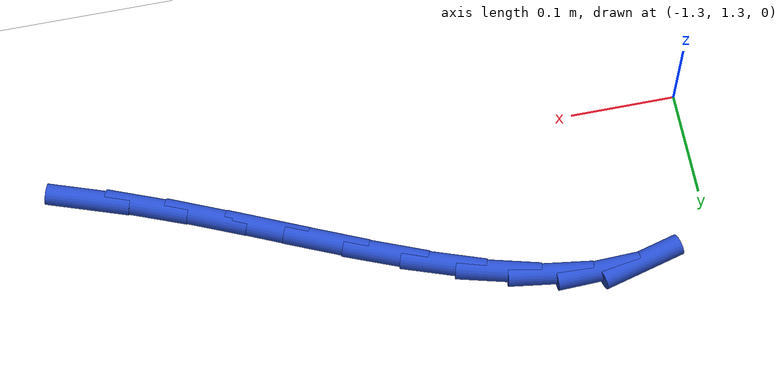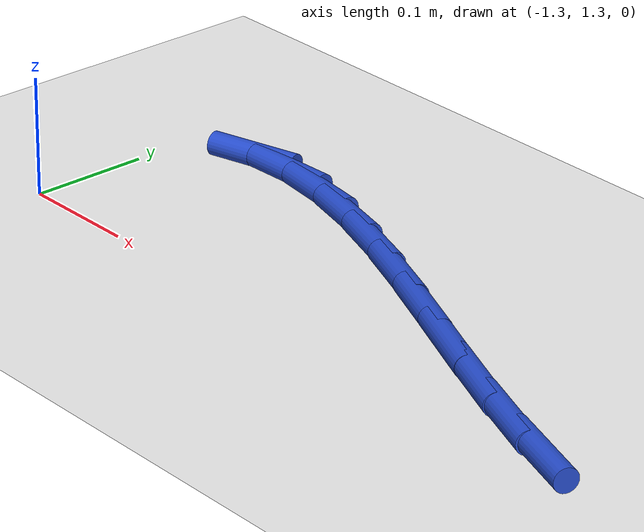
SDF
<sdf version="1.6">
 <world name="default">
  <model name="ground_plane">
   <static>1</static>
   <link name="link">
    <collision name="collision">
     <geometry><plane><normal>0 0 1</normal><size>100 100</size></plane></geometry>
     <surface><friction><ode><mu>100</mu><mu2>50</mu2></ode></friction></surface>
    </collision>
    <visual name="visual">
     <cast_shadows>0</cast_shadows>
     <geometry><plane><normal>0 0 1</normal><size>100 100</size></plane></geometry>
     <material>
      <script><uri>file://media/materials/scripts/gazebo.material</uri><name>Gazebo/WhiteGlow</name></script>
     </material>
    </visual>
   </link>
  </model>
  <model name="line">
   <link name="link_34">
    <pose>-0.7340715849862872 1.300425726356011 0.01 0 1.57 -0.3334043114264832</pose>
    <collision name="collision">
     <geometry><cylinder><radius>0.01</radius><length>0.08</length></cylinder></geometry>
    </collision>
    <visual name="visual">
     <material>
      <script><name>Gazebo/Blue</name><uri>file://media/materials/scripts/gazebo.material</uri></script>
     </material>
     <geometry><cylinder><radius>0.01</radius><length>0.08</length></cylinder></geometry>
    </visual>
   </link>
   <link name="link_35">
    <pose>-0.7865638263673819 1.318605523849465 0.01 0 1.57 -0.37798311117815814</pose>
    <collision name="collision">
     <geometry><cylinder><radius>0.01</radius><length>0.08</length></cylinder></geometry>
    </collision>
    <visual name="visual">
     <material>
      <script><name>Gazebo/Blue</name><uri>file://media/materials/scripts/gazebo.material</uri></script>
     </material>
     <geometry><cylinder><radius>0.01</radius><length>0.08</length></cylinder></geometry>
    </visual>
   </link>
   <link name="link_36">
    <pose>-0.8395564898213262 1.3396476363814371 0.01 0 1.57 -0.40718763113563555</pose>
    <collision name="collision">
     <geometry><cylinder><radius>0.01</radius><length>0.08</length></cylinder></geometry>
    </collision>
    <visual name="visual">
     <material>
      <script><name>Gazebo/Blue</name><uri>file://media/materials/scripts/gazebo.material</uri></script>
     </material>
     <geometry><cylinder><radius>0.01</radius><length>0.08</length></cylinder></geometry>
    </visual>
   </link>
   <link name="link_37">
    <pose>-0.8926249547335804 1.3625356216721456 0.01 0 1.57 -0.4180092884224215</pose>
    <collision name="collision">
     <geometry><cylinder><radius>0.01</radius><length>0.08</length></cylinder></geometry>
    </collision>
    <visual name="visual">
     <material>
      <script><name>Gazebo/Blue</name><uri>file://media/materials/scripts/gazebo.material</uri></script>
     </material>
     <geometry><cylinder><radius>0.01</radius><length>0.08</length></cylinder></geometry>
    </visual>
   </link>
   <link name="link_38">
    <pose>-0.9453228902887438 1.385943356970774 0.01 0 1.57 -0.41084642765536583</pose>
    <collision name="collision">
     <geometry><cylinder><radius>0.01</radius><length>0.08</length></cylinder></geometry>
    </collision>
    <visual name="visual">
     <material>
      <script><name>Gazebo/Blue</name><uri>file://media/materials/scripts/gazebo.material</uri></script>
     </material>
     <geometry><cylinder><radius>0.01</radius><length>0.08</length></cylinder></geometry>
    </visual>
   </link>
   <link name="link_39">
    <pose>-0.9972039656714178 1.4085447195265073 0.01 0 1.57 -0.3842766454186065</pose>
    <collision name="collision">
     <geometry><cylinder><radius>0.01</radius><length>0.08</length></cylinder></geometry>
    </collision>
    <visual name="visual">
     <material>
      <script><name>Gazebo/Blue</name><uri>file://media/materials/scripts/gazebo.material</uri></script>
     </material>
     <geometry><cylinder><radius>0.01</radius><length>0.08</length></cylinder></geometry>
    </visual>
   </link>
   <link name="link_40">
    <pose>-1.0478218500662029 1.4290135865885303 0.01 0 1.57 -0.334712112047795</pose>
    <collision name="collision">
     <geometry><cylinder><radius>0.01</radius><length>0.08</length></cylinder></geometry>
    </collision>
    <visual name="visual">
     <material>
      <script><name>Gazebo/Blue</name><uri>file://media/materials/scripts/gazebo.material</uri></script>
     </material>
     <geometry><cylinder><radius>0.01</radius><length>0.08</length></cylinder></geometry>
    </visual>
   </link>
   <link name="link_41">
    <pose>-1.0967302126576994 1.446023835406027 0.01 0 1.57 -0.255767088914733</pose>
    <collision name="collision">
     <geometry><cylinder><radius>0.01</radius><length>0.08</length></cylinder></geometry>
    </collision>
    <visual name="visual">
     <material>
      <script><name>Gazebo/Blue</name><uri>file://media/materials/scripts/gazebo.material</uri></script>
     </material>
     <geometry><cylinder><radius>0.01</radius><length>0.08</length></cylinder></geometry>
    </visual>
   </link>
   <link name="link_42">
    <pose>-1.1434827226305084 1.458249343228183 0.01 0 1.57 -0.13762055963404898</pose>
    <collision name="collision">
     <geometry><cylinder><radius>0.01</radius><length>0.08</length></cylinder></geometry>
    </collision>
    <visual name="visual">
     <material>
      <script><name>Gazebo/Blue</name><uri>file://media/materials/scripts/gazebo.material</uri></script>
     </material>
     <geometry><cylinder><radius>0.01</radius><length>0.08</length></cylinder></geometry>
    </visual>
   </link>
   <link name="link_43">
    <pose>-1.1876330491692293 1.4643639873041816 0.01 0 1.57 0.03216126967364137</pose>
    <collision name="collision">
     <geometry><cylinder><radius>0.01</radius><length>0.08</length></cylinder></geometry>
    </collision>
    <visual name="visual">
     <material>
      <script><name>Gazebo/Blue</name><uri>file://media/materials/scripts/gazebo.material</uri></script>
     </material>
     <geometry><cylinder><radius>0.01</radius><length>0.08</length></cylinder></geometry>
    </visual>
   </link>
   <link name="link_44">
    <pose>-1.2287348614584637 1.4630416448832073 0.01 0 1.57 0.26201509878968204</pose>
    <collision name="collision">
     <geometry><cylinder><radius>0.01</radius><length>0.08</length></cylinder></geometry>
    </collision>
    <visual name="visual">
     <material>
      <script><name>Gazebo/Blue</name><uri>file://media/materials/scripts/gazebo.material</uri></script>
     </material>
     <geometry><cylinder><radius>0.01</radius><length>0.08</length></cylinder></geometry>
    </visual>
   </link>
  </model>
 </world>
</sdf>
